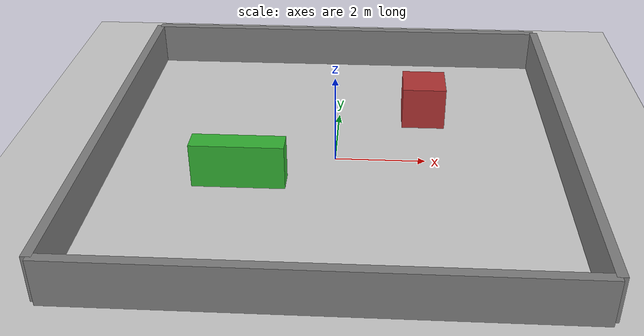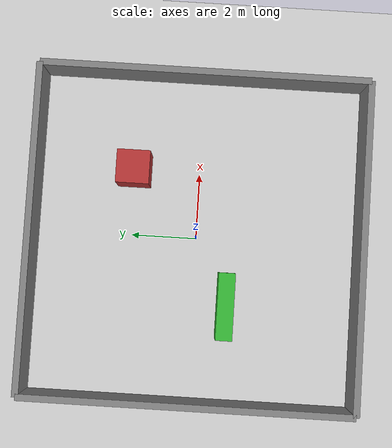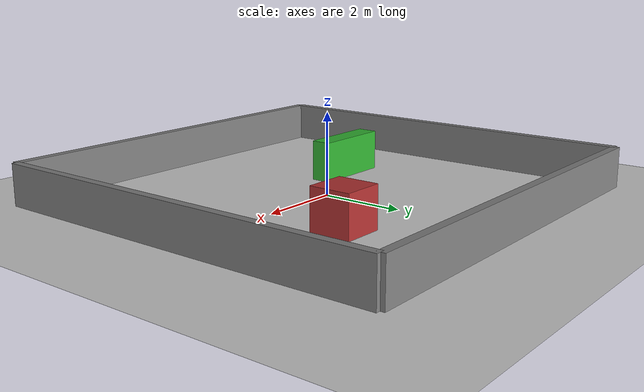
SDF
<?xml version="1.0" ?>
<sdf version="1.8">
  <world name="house">

    <gravity>0 0 -9.8</gravity>
    <physics default="0" name="default_physics" type="ode">
      <max_step_size>0.01</max_step_size>
      <real_time_factor>1</real_time_factor>
      <real_time_update_rate>100</real_time_update_rate>
    </physics>

    <plugin
      filename="gz-sim-physics-system"
      name="gz::sim::systems::Physics">
    </plugin>
    <plugin
      filename="gz-sim-user-commands-system"
      name="gz::sim::systems::UserCommands">
    </plugin>
    <plugin
      filename="gz-sim-scene-broadcaster-system"
      name="gz::sim::systems::SceneBroadcaster">
    </plugin>
    <!-- NOTE: Sensors plugin is NOT here — it is loaded by the robot URDF (plugins.urdf.xacro).
         Having it in BOTH the world AND the model causes a segfault in Gazebo Harmonic. -->

    <light name="sun" type="directional">
      <cast_shadows>true</cast_shadows>
      <pose>0 0 10 0 0 0</pose>
      <diffuse>0.8 0.8 0.8 1</diffuse>
      <specular>0.2 0.2 0.2 1</specular>
      <attenuation>
        <range>1000</range>
        <constant>0.9</constant>
        <linear>0.01</linear>
        <quadratic>0.001</quadratic>
      </attenuation>
      <direction>-0.5 0.1 -0.9</direction>
    </light>

    <model name="ground_plane">
      <static>true</static>
      <link name="link">
        <collision name="collision">
          <geometry>
            <plane>
              <normal>0 0 1</normal>
              <size>100 100</size>
            </plane>
          </geometry>
        </collision>
        <visual name="visual">
          <geometry>
            <plane>
              <normal>0 0 1</normal>
              <size>100 100</size>
            </plane>
          </geometry>
          <material>
            <ambient>0.8 0.8 0.8 1</ambient>
            <diffuse>0.8 0.8 0.8 1</diffuse>
            <specular>0.8 0.8 0.8 1</specular>
          </material>
        </visual>
      </link>
    </model>

    <!-- Walled Room 10x10m -->
    <model name="room_walls">
      <static>true</static>
      <pose>0 0 0.5 0 0 0</pose>

      <!-- North Wall -->
      <link name="wall_north">
        <pose>0 5 0 0 0 0</pose>
        <collision name="collision">
          <geometry><box><size>10 0.2 1</size></box></geometry>
        </collision>
        <visual name="visual">
          <geometry><box><size>10 0.2 1</size></box></geometry>
          <material><ambient>0.5 0.5 0.5 1</ambient></material>
        </visual>
      </link>

      <!-- South Wall -->
      <link name="wall_south">
        <pose>0 -5 0 0 0 0</pose>
        <collision name="collision">
          <geometry><box><size>10 0.2 1</size></box></geometry>
        </collision>
        <visual name="visual">
          <geometry><box><size>10 0.2 1</size></box></geometry>
          <material><ambient>0.5 0.5 0.5 1</ambient></material>
        </visual>
      </link>

      <!-- East Wall -->
      <link name="wall_east">
        <pose>5 0 0 0 0 0</pose>
        <collision name="collision">
          <geometry><box><size>0.2 10 1</size></box></geometry>
        </collision>
        <visual name="visual">
          <geometry><box><size>0.2 10 1</size></box></geometry>
          <material><ambient>0.5 0.5 0.5 1</ambient></material>
        </visual>
      </link>

      <!-- West Wall -->
      <link name="wall_west">
        <pose>-5 0 0 0 0 0</pose>
        <collision name="collision">
          <geometry><box><size>0.2 10 1</size></box></geometry>
        </collision>
        <visual name="visual">
          <geometry><box><size>0.2 10 1</size></box></geometry>
          <material><ambient>0.5 0.5 0.5 1</ambient></material>
        </visual>
      </link>

      <!-- Inner obstacle 1 -->
      <link name="inner_box_1">
        <pose>2 2 0 0 0 0</pose>
        <collision name="collision">
          <geometry><box><size>1 1 1</size></box></geometry>
        </collision>
        <visual name="visual">
          <geometry><box><size>1 1 1</size></box></geometry>
          <material><ambient>0.7 0.2 0.2 1</ambient></material>
        </visual>
      </link>

      <!-- Inner obstacle 2 -->
      <link name="inner_box_2">
        <pose>-2 -1 0 0 0 0</pose>
        <collision name="collision">
          <geometry><box><size>2 0.5 1</size></box></geometry>
        </collision>
        <visual name="visual">
          <geometry><box><size>2 0.5 1</size></box></geometry>
          <material><ambient>0.2 0.7 0.2 1</ambient></material>
        </visual>
      </link>

    </model>

  </world>
</sdf>
